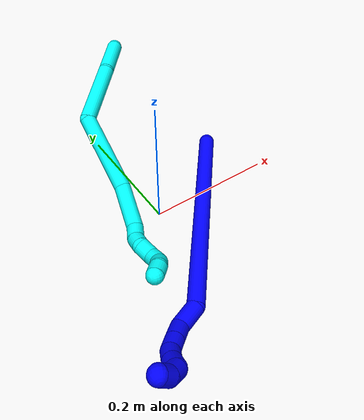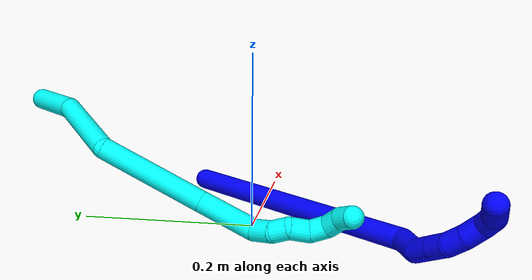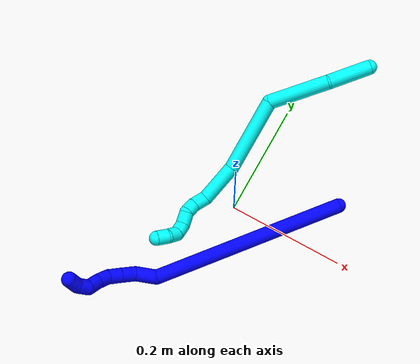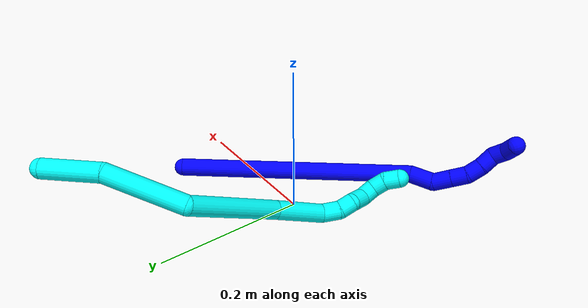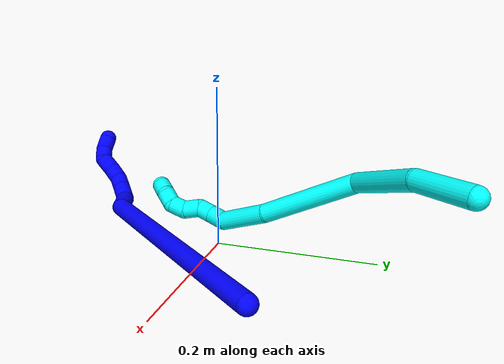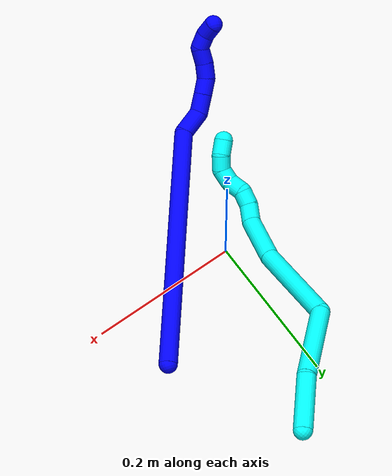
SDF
<sdf version="1.7">
 <world name="default">
  <model name="1">
   <static>0</static>
   <link name="1">
    <collision name="collision-cylinder-e_1_1_4">
     <pose>-0.037888 -0.055722 0.151927 0.351535 -0.229987 -0.041021</pose>
     <geometry><cylinder><radius>0.0125</radius><length>0.332398</length></cylinder></geometry>
     <surface>
      <friction><ode><mu>1.16</mu><mu2>1.16</mu2><slip1>0</slip1><slip2>0</slip2></ode></friction>
      <contact><ode><kp>1e+06</kp><kd>1</kd><max_vel>0</max_vel><min_depth>0.001</min_depth></ode></contact>
     </surface>
    </collision>
    <visual name="visual-cylinder-e_1_1_4">
     <pose>-0.037888 -0.055722 0.151927 0.351535 -0.229987 -0.041021</pose>
     <geometry><cylinder><radius>0.0125</radius><length>0.332398</length></cylinder></geometry>
     <material><ambient>0 0 1 1</ambient></material>
    </visual>
    <collision name="collision-cylinder-e_2_4_5">
     <pose>-0.087499 -0.119473 0.314761 0.634546 -0.713474 -0.243541</pose>
     <geometry><cylinder><radius>0.0125</radius><length>0.035827</length></cylinder></geometry>
     <surface>
      <friction><ode><mu>1.16</mu><mu2>1.16</mu2><slip1>0</slip1><slip2>0</slip2></ode></friction>
      <contact><ode><kp>1e+06</kp><kd>1</kd><max_vel>0</max_vel><min_depth>0.001</min_depth></ode></contact>
     </surface>
    </collision>
    <visual name="visual-cylinder-e_2_4_5">
     <pose>-0.087499 -0.119473 0.314761 0.634546 -0.713474 -0.243541</pose>
     <geometry><cylinder><radius>0.0125</radius><length>0.035827</length></cylinder></geometry>
     <material><ambient>0 0 1 1</ambient></material>
    </visual>
    <collision name="collision-cylinder-e_3_5_6">
     <pose>-0.106031 -0.127325 0.337002 -0.015611 -0.540894 0.004328</pose>
     <geometry><cylinder><radius>0.0125</radius><length>0.026444</length></cylinder></geometry>
     <surface>
      <friction><ode><mu>1.16</mu><mu2>1.16</mu2><slip1>0</slip1><slip2>0</slip2></ode></friction>
      <contact><ode><kp>1e+06</kp><kd>1</kd><max_vel>0</max_vel><min_depth>0.001</min_depth></ode></contact>
     </surface>
    </collision>
    <visual name="visual-cylinder-e_3_5_6">
     <pose>-0.106031 -0.127325 0.337002 -0.015611 -0.540894 0.004328</pose>
     <geometry><cylinder><radius>0.0125</radius><length>0.026444</length></cylinder></geometry>
     <material><ambient>0 0 1 1</ambient></material>
    </visual>
    <collision name="collision-cylinder-e_4_6_7">
     <pose>-0.118335 -0.127056 0.357895 -0.009713 -0.521786 0.002593</pose>
     <geometry><cylinder><radius>0.0125</radius><length>0.022055</length></cylinder></geometry>
     <surface>
      <friction><ode><mu>1.16</mu><mu2>1.16</mu2><slip1>0</slip1><slip2>0</slip2></ode></friction>
      <contact><ode><kp>1e+06</kp><kd>1</kd><max_vel>0</max_vel><min_depth>0.001</min_depth></ode></contact>
     </surface>
    </collision>
    <visual name="visual-cylinder-e_4_6_7">
     <pose>-0.118335 -0.127056 0.357895 -0.009713 -0.521786 0.002593</pose>
     <geometry><cylinder><radius>0.0125</radius><length>0.022055</length></cylinder></geometry>
     <material><ambient>0 0 1 1</ambient></material>
    </visual>
    <collision name="collision-cylinder-e_5_7_8">
     <pose>-0.126526 -0.124058 0.377314 -0.286514 -0.256338 0.037175</pose>
     <geometry><cylinder><radius>0.0125</radius><length>0.02125</length></cylinder></geometry>
     <surface>
      <friction><ode><mu>1.16</mu><mu2>1.16</mu2><slip1>0</slip1><slip2>0</slip2></ode></friction>
      <contact><ode><kp>1e+06</kp><kd>1</kd><max_vel>0</max_vel><min_depth>0.001</min_depth></ode></contact>
     </surface>
    </collision>
    <visual name="visual-cylinder-e_5_7_8">
     <pose>-0.126526 -0.124058 0.377314 -0.286514 -0.256338 0.037175</pose>
     <geometry><cylinder><radius>0.0125</radius><length>0.02125</length></cylinder></geometry>
     <material><ambient>0 0 1 1</ambient></material>
    </visual>
    <collision name="collision-cylinder-e_6_8_9">
     <pose>-0.130711 -0.116462 0.396968 -0.446663 -0.136489 0.031045</pose>
     <geometry><cylinder><radius>0.0125</radius><length>0.021925</length></cylinder></geometry>
     <surface>
      <friction><ode><mu>1.16</mu><mu2>1.16</mu2><slip1>0</slip1><slip2>0</slip2></ode></friction>
      <contact><ode><kp>1e+06</kp><kd>1</kd><max_vel>0</max_vel><min_depth>0.001</min_depth></ode></contact>
     </surface>
    </collision>
    <visual name="visual-cylinder-e_6_8_9">
     <pose>-0.130711 -0.116462 0.396968 -0.446663 -0.136489 0.031045</pose>
     <geometry><cylinder><radius>0.0125</radius><length>0.021925</length></cylinder></geometry>
     <material><ambient>0 0 1 1</ambient></material>
    </visual>
    <collision name="collision-cylinder-e_7_9_10">
     <pose>-0.139262 -0.109734 0.413548 -0.29169 -0.783671 0.12124</pose>
     <geometry><cylinder><radius>0.0125</radius><length>0.020001</length></cylinder></geometry>
     <surface>
      <friction><ode><mu>1.16</mu><mu2>1.16</mu2><slip1>0</slip1><slip2>0</slip2></ode></friction>
      <contact><ode><kp>1e+06</kp><kd>1</kd><max_vel>0</max_vel><min_depth>0.001</min_depth></ode></contact>
     </surface>
    </collision>
    <visual name="visual-cylinder-e_7_9_10">
     <pose>-0.139262 -0.109734 0.413548 -0.29169 -0.783671 0.12124</pose>
     <geometry><cylinder><radius>0.0125</radius><length>0.020001</length></cylinder></geometry>
     <material><ambient>0 0 1 1</ambient></material>
    </visual>
    <collision name="collision-cylinder-e_8_10_2">
     <pose>-0.154848 -0.10353 0.423638 -0.900195 -1.01307 0.523831</pose>
     <geometry><cylinder><radius>0.0125</radius><length>0.020098</length></cylinder></geometry>
     <surface>
      <friction><ode><mu>1.16</mu><mu2>1.16</mu2><slip1>0</slip1><slip2>0</slip2></ode></friction>
      <contact><ode><kp>1e+06</kp><kd>1</kd><max_vel>0</max_vel><min_depth>0.001</min_depth></ode></contact>
     </surface>
    </collision>
    <visual name="visual-cylinder-e_8_10_2">
     <pose>-0.154848 -0.10353 0.423638 -0.900195 -1.01307 0.523831</pose>
     <geometry><cylinder><radius>0.0125</radius><length>0.020098</length></cylinder></geometry>
     <material><ambient>0 0 1 1</ambient></material>
    </visual>
    <collision name="collision-sphere-2">
     <pose>-0.163374 -0.099363 0.426943 0 -0 0</pose>
     <geometry><sphere><radius>0.0125</radius></sphere></geometry>
     <surface>
      <friction><ode><mu>1.16</mu><mu2>1.16</mu2><slip1>0</slip1><slip2>0</slip2></ode></friction>
      <contact><ode><kp>1e+06</kp><kd>1</kd><max_vel>0</max_vel><min_depth>0.001</min_depth></ode></contact>
     </surface>
    </collision>
    <visual name="visual-sphere-2">
     <pose>-0.163374 -0.099363 0.426943 0 -0 0</pose>
     <geometry><sphere><radius>0.0125</radius></sphere></geometry>
     <material><ambient>0 0 1 1</ambient></material>
    </visual>
    <collision name="collision-sphere-10">
     <pose>-0.146322 -0.107697 0.420332 0 -0 0</pose>
     <geometry><sphere><radius>0.0125</radius></sphere></geometry>
     <surface>
      <friction><ode><mu>1.16</mu><mu2>1.16</mu2><slip1>0</slip1><slip2>0</slip2></ode></friction>
      <contact><ode><kp>1e+06</kp><kd>1</kd><max_vel>0</max_vel><min_depth>0.001</min_depth></ode></contact>
     </surface>
    </collision>
    <visual name="visual-sphere-10">
     <pose>-0.146322 -0.107697 0.420332 0 -0 0</pose>
     <geometry><sphere><radius>0.0125</radius></sphere></geometry>
     <material><ambient>0 0 1 1</ambient></material>
    </visual>
    <collision name="collision-sphere-9">
     <pose>-0.132203 -0.111771 0.406763 0 -0 0</pose>
     <geometry><sphere><radius>0.0125</radius></sphere></geometry>
     <surface>
      <friction><ode><mu>1.16</mu><mu2>1.16</mu2><slip1>0</slip1><slip2>0</slip2></ode></friction>
      <contact><ode><kp>1e+06</kp><kd>1</kd><max_vel>0</max_vel><min_depth>0.001</min_depth></ode></contact>
     </surface>
    </collision>
    <visual name="visual-sphere-9">
     <pose>-0.132203 -0.111771 0.406763 0 -0 0</pose>
     <geometry><sphere><radius>0.0125</radius></sphere></geometry>
     <material><ambient>0 0 1 1</ambient></material>
    </visual>
    <collision name="collision-sphere-4">
     <pose>-0.075775 -0.111444 0.303853 0 -0 0</pose>
     <geometry><sphere><radius>0.0125</radius></sphere></geometry>
     <surface>
      <friction><ode><mu>1.16</mu><mu2>1.16</mu2><slip1>0</slip1><slip2>0</slip2></ode></friction>
      <contact><ode><kp>1e+06</kp><kd>1</kd><max_vel>0</max_vel><min_depth>0.001</min_depth></ode></contact>
     </surface>
    </collision>
    <visual name="visual-sphere-4">
     <pose>-0.075775 -0.111444 0.303853 0 -0 0</pose>
     <geometry><sphere><radius>0.0125</radius></sphere></geometry>
     <material><ambient>0 0 1 1</ambient></material>
    </visual>
    <collision name="collision-sphere-1">
     <geometry><sphere><radius>0.0125</radius></sphere></geometry>
     <surface>
      <friction><ode><mu>1.16</mu><mu2>1.16</mu2><slip1>0</slip1><slip2>0</slip2></ode></friction>
      <contact><ode><kp>1e+06</kp><kd>1</kd><max_vel>0</max_vel><min_depth>0.001</min_depth></ode></contact>
     </surface>
    </collision>
    <visual name="visual-sphere-1">
     <geometry><sphere><radius>0.0125</radius></sphere></geometry>
     <material><ambient>0 0 1 1</ambient></material>
    </visual>
    <collision name="collision-sphere-8">
     <pose>-0.12922 -0.121153 0.387173 0 -0 0</pose>
     <geometry><sphere><radius>0.0125</radius></sphere></geometry>
     <surface>
      <friction><ode><mu>1.16</mu><mu2>1.16</mu2><slip1>0</slip1><slip2>0</slip2></ode></friction>
      <contact><ode><kp>1e+06</kp><kd>1</kd><max_vel>0</max_vel><min_depth>0.001</min_depth></ode></contact>
     </surface>
    </collision>
    <visual name="visual-sphere-8">
     <pose>-0.12922 -0.121153 0.387173 0 -0 0</pose>
     <geometry><sphere><radius>0.0125</radius></sphere></geometry>
     <material><ambient>0 0 1 1</ambient></material>
    </visual>
    <collision name="collision-sphere-5">
     <pose>-0.099223 -0.127502 0.325669 0 -0 0</pose>
     <geometry><sphere><radius>0.0125</radius></sphere></geometry>
     <surface>
      <friction><ode><mu>1.16</mu><mu2>1.16</mu2><slip1>0</slip1><slip2>0</slip2></ode></friction>
      <contact><ode><kp>1e+06</kp><kd>1</kd><max_vel>0</max_vel><min_depth>0.001</min_depth></ode></contact>
     </surface>
    </collision>
    <visual name="visual-sphere-5">
     <pose>-0.099223 -0.127502 0.325669 0 -0 0</pose>
     <geometry><sphere><radius>0.0125</radius></sphere></geometry>
     <material><ambient>0 0 1 1</ambient></material>
    </visual>
    <collision name="collision-sphere-6">
     <pose>-0.112839 -0.127148 0.348336 0 -0 0</pose>
     <geometry><sphere><radius>0.0125</radius></sphere></geometry>
     <surface>
      <friction><ode><mu>1.16</mu><mu2>1.16</mu2><slip1>0</slip1><slip2>0</slip2></ode></friction>
      <contact><ode><kp>1e+06</kp><kd>1</kd><max_vel>0</max_vel><min_depth>0.001</min_depth></ode></contact>
     </surface>
    </collision>
    <visual name="visual-sphere-6">
     <pose>-0.112839 -0.127148 0.348336 0 -0 0</pose>
     <geometry><sphere><radius>0.0125</radius></sphere></geometry>
     <material><ambient>0 0 1 1</ambient></material>
    </visual>
    <collision name="collision-sphere-7">
     <pose>-0.123832 -0.126963 0.367455 0 -0 0</pose>
     <geometry><sphere><radius>0.0125</radius></sphere></geometry>
     <surface>
      <friction><ode><mu>1.16</mu><mu2>1.16</mu2><slip1>0</slip1><slip2>0</slip2></ode></friction>
      <contact><ode><kp>1e+06</kp><kd>1</kd><max_vel>0</max_vel><min_depth>0.001</min_depth></ode></contact>
     </surface>
    </collision>
    <visual name="visual-sphere-7">
     <pose>-0.123832 -0.126963 0.367455 0 -0 0</pose>
     <geometry><sphere><radius>0.0125</radius></sphere></geometry>
     <material><ambient>0 0 1 1</ambient></material>
    </visual>
    <inertial>
     <pose>-0.065189 -0.076874 0.22418 0 -0 0</pose>
     <mass>0.5</mass>
     <inertia>
      <ixx>0.002867</ixx>
      <ixy>0</ixy>
      <ixz>0</ixz>
      <iyy>0.002777</iyy>
      <iyz>0</iyz>
      <izz>0.001773</izz>
     </inertia>
    </inertial>
   </link>
   <pose>0.156357 0.087677 0.011498 1.32093 0.409072 -0.432749</pose>
  </model>
  <model name="3">
   <static>0</static>
   <link name="3">
    <collision name="collision-cylinder-e_1_1_4">
     <pose>-0.013261 -0.019115 -0.027766 2.53868 -0.374809 -1.09529</pose>
     <geometry><cylinder><radius>0.0125</radius><length>0.072448</length></cylinder></geometry>
     <surface>
      <friction><ode><mu>1.16</mu><mu2>1.16</mu2><slip1>0</slip1><slip2>0</slip2></ode></friction>
      <contact><ode><kp>1e+06</kp><kd>1</kd><max_vel>0</max_vel><min_depth>0.001</min_depth></ode></contact>
     </surface>
    </collision>
    <visual name="visual-cylinder-e_1_1_4">
     <pose>-0.013261 -0.019115 -0.027766 2.53868 -0.374809 -1.09529</pose>
     <geometry><cylinder><radius>0.0125</radius><length>0.072448</length></cylinder></geometry>
     <material><ambient>0.003922 1 0.996078 1</ambient></material>
    </visual>
    <collision name="collision-cylinder-e_2_4_5">
     <pose>-0.032555 -0.074244 -0.092126 2.36417 -0.11696 -0.283984</pose>
     <geometry><cylinder><radius>0.0125</radius><length>0.103394</length></cylinder></geometry>
     <surface>
      <friction><ode><mu>1.16</mu><mu2>1.16</mu2><slip1>0</slip1><slip2>0</slip2></ode></friction>
      <contact><ode><kp>1e+06</kp><kd>1</kd><max_vel>0</max_vel><min_depth>0.001</min_depth></ode></contact>
     </surface>
    </collision>
    <visual name="visual-cylinder-e_2_4_5">
     <pose>-0.032555 -0.074244 -0.092126 2.36417 -0.11696 -0.283984</pose>
     <geometry><cylinder><radius>0.0125</radius><length>0.103394</length></cylinder></geometry>
     <material><ambient>0.003922 1 0.996078 1</ambient></material>
    </visual>
    <collision name="collision-cylinder-e_3_5_6">
     <pose>-0.070891 -0.164959 -0.137104 1.72289 -0.528372 -0.61056</pose>
     <geometry><cylinder><radius>0.0125</radius><length>0.128154</length></cylinder></geometry>
     <surface>
      <friction><ode><mu>1.16</mu><mu2>1.16</mu2><slip1>0</slip1><slip2>0</slip2></ode></friction>
      <contact><ode><kp>1e+06</kp><kd>1</kd><max_vel>0</max_vel><min_depth>0.001</min_depth></ode></contact>
     </surface>
    </collision>
    <visual name="visual-cylinder-e_3_5_6">
     <pose>-0.070891 -0.164959 -0.137104 1.72289 -0.528372 -0.61056</pose>
     <geometry><cylinder><radius>0.0125</radius><length>0.128154</length></cylinder></geometry>
     <material><ambient>0.003922 1 0.996078 1</ambient></material>
    </visual>
    <collision name="collision-cylinder-e_4_6_7">
     <pose>-0.119653 -0.247686 -0.156647 1.94971 -0.499455 -0.719422</pose>
     <geometry><cylinder><radius>0.0125</radius><length>0.06873</length></cylinder></geometry>
     <surface>
      <friction><ode><mu>1.16</mu><mu2>1.16</mu2><slip1>0</slip1><slip2>0</slip2></ode></friction>
      <contact><ode><kp>1e+06</kp><kd>1</kd><max_vel>0</max_vel><min_depth>0.001</min_depth></ode></contact>
     </surface>
    </collision>
    <visual name="visual-cylinder-e_4_6_7">
     <pose>-0.119653 -0.247686 -0.156647 1.94971 -0.499455 -0.719422</pose>
     <geometry><cylinder><radius>0.0125</radius><length>0.06873</length></cylinder></geometry>
     <material><ambient>0.003922 1 0.996078 1</ambient></material>
    </visual>
    <collision name="collision-cylinder-e_5_7_8">
     <pose>-0.143388 -0.28122 -0.17596 2.54761 -0.636722 -1.6448</pose>
     <geometry><cylinder><radius>0.0125</radius><length>0.024475</length></cylinder></geometry>
     <surface>
      <friction><ode><mu>1.16</mu><mu2>1.16</mu2><slip1>0</slip1><slip2>0</slip2></ode></friction>
      <contact><ode><kp>1e+06</kp><kd>1</kd><max_vel>0</max_vel><min_depth>0.001</min_depth></ode></contact>
     </surface>
    </collision>
    <visual name="visual-cylinder-e_5_7_8">
     <pose>-0.143388 -0.28122 -0.17596 2.54761 -0.636722 -1.6448</pose>
     <geometry><cylinder><radius>0.0125</radius><length>0.024475</length></cylinder></geometry>
     <material><ambient>0.003922 1 0.996078 1</ambient></material>
    </visual>
    <collision name="collision-cylinder-e_6_8_9">
     <pose>-0.15919 -0.289441 -0.188639 2.60119 -1.0166 -2.21886</pose>
     <geometry><cylinder><radius>0.0125</radius><length>0.020053</length></cylinder></geometry>
     <surface>
      <friction><ode><mu>1.16</mu><mu2>1.16</mu2><slip1>0</slip1><slip2>0</slip2></ode></friction>
      <contact><ode><kp>1e+06</kp><kd>1</kd><max_vel>0</max_vel><min_depth>0.001</min_depth></ode></contact>
     </surface>
    </collision>
    <visual name="visual-cylinder-e_6_8_9">
     <pose>-0.15919 -0.289441 -0.188639 2.60119 -1.0166 -2.21886</pose>
     <geometry><cylinder><radius>0.0125</radius><length>0.020053</length></cylinder></geometry>
     <material><ambient>0.003922 1 0.996078 1</ambient></material>
    </visual>
    <collision name="collision-cylinder-e_7_9_10">
     <pose>-0.176423 -0.299359 -0.19309 1.56052 -0.879641 -0.871751</pose>
     <geometry><cylinder><radius>0.0125</radius><length>0.022601</length></cylinder></geometry>
     <surface>
      <friction><ode><mu>1.16</mu><mu2>1.16</mu2><slip1>0</slip1><slip2>0</slip2></ode></friction>
      <contact><ode><kp>1e+06</kp><kd>1</kd><max_vel>0</max_vel><min_depth>0.001</min_depth></ode></contact>
     </surface>
    </collision>
    <visual name="visual-cylinder-e_7_9_10">
     <pose>-0.176423 -0.299359 -0.19309 1.56052 -0.879641 -0.871751</pose>
     <geometry><cylinder><radius>0.0125</radius><length>0.022601</length></cylinder></geometry>
     <material><ambient>0.003922 1 0.996078 1</ambient></material>
    </visual>
    <collision name="collision-cylinder-e_8_10_11">
     <pose>-0.194394 -0.308927 -0.196137 2.49308 -1.17087 -2.20314</pose>
     <geometry><cylinder><radius>0.0125</radius><length>0.020117</length></cylinder></geometry>
     <surface>
      <friction><ode><mu>1.16</mu><mu2>1.16</mu2><slip1>0</slip1><slip2>0</slip2></ode></friction>
      <contact><ode><kp>1e+06</kp><kd>1</kd><max_vel>0</max_vel><min_depth>0.001</min_depth></ode></contact>
     </surface>
    </collision>
    <visual name="visual-cylinder-e_8_10_11">
     <pose>-0.194394 -0.308927 -0.196137 2.49308 -1.17087 -2.20314</pose>
     <geometry><cylinder><radius>0.0125</radius><length>0.020117</length></cylinder></geometry>
     <material><ambient>0.003922 1 0.996078 1</ambient></material>
    </visual>
    <collision name="collision-cylinder-e_9_11_12">
     <pose>-0.210237 -0.310555 -0.206768 -3.04373 -0.716957 2.88165</pose>
     <geometry><cylinder><radius>0.0125</radius><length>0.020021</length></cylinder></geometry>
     <surface>
      <friction><ode><mu>1.16</mu><mu2>1.16</mu2><slip1>0</slip1><slip2>0</slip2></ode></friction>
      <contact><ode><kp>1e+06</kp><kd>1</kd><max_vel>0</max_vel><min_depth>0.001</min_depth></ode></contact>
     </surface>
    </collision>
    <visual name="visual-cylinder-e_9_11_12">
     <pose>-0.210237 -0.310555 -0.206768 -3.04373 -0.716957 2.88165</pose>
     <geometry><cylinder><radius>0.0125</radius><length>0.020021</length></cylinder></geometry>
     <material><ambient>0.003922 1 0.996078 1</ambient></material>
    </visual>
    <collision name="collision-cylinder-e_10_12_2">
     <pose>-0.221144 -0.311761 -0.223085 2.92448 -0.44754 -2.24836</pose>
     <geometry><cylinder><radius>0.0125</radius><length>0.020008</length></cylinder></geometry>
     <surface>
      <friction><ode><mu>1.16</mu><mu2>1.16</mu2><slip1>0</slip1><slip2>0</slip2></ode></friction>
      <contact><ode><kp>1e+06</kp><kd>1</kd><max_vel>0</max_vel><min_depth>0.001</min_depth></ode></contact>
     </surface>
    </collision>
    <visual name="visual-cylinder-e_10_12_2">
     <pose>-0.221144 -0.311761 -0.223085 2.92448 -0.44754 -2.24836</pose>
     <geometry><cylinder><radius>0.0125</radius><length>0.020008</length></cylinder></geometry>
     <material><ambient>0.003922 1 0.996078 1</ambient></material>
    </visual>
    <collision name="collision-sphere-2">
     <pose>-0.225473 -0.313704 -0.231892 0 -0 0</pose>
     <geometry><sphere><radius>0.0125</radius></sphere></geometry>
     <surface>
      <friction><ode><mu>1.16</mu><mu2>1.16</mu2><slip1>0</slip1><slip2>0</slip2></ode></friction>
      <contact><ode><kp>1e+06</kp><kd>1</kd><max_vel>0</max_vel><min_depth>0.001</min_depth></ode></contact>
     </surface>
    </collision>
    <visual name="visual-sphere-2">
     <pose>-0.225473 -0.313704 -0.231892 0 -0 0</pose>
     <geometry><sphere><radius>0.0125</radius></sphere></geometry>
     <material><ambient>0.003922 1 0.996078 1</ambient></material>
    </visual>
    <collision name="collision-sphere-12">
     <pose>-0.216815 -0.309818 -0.214278 0 -0 0</pose>
     <geometry><sphere><radius>0.0125</radius></sphere></geometry>
     <surface>
      <friction><ode><mu>1.16</mu><mu2>1.16</mu2><slip1>0</slip1><slip2>0</slip2></ode></friction>
      <contact><ode><kp>1e+06</kp><kd>1</kd><max_vel>0</max_vel><min_depth>0.001</min_depth></ode></contact>
     </surface>
    </collision>
    <visual name="visual-sphere-12">
     <pose>-0.216815 -0.309818 -0.214278 0 -0 0</pose>
     <geometry><sphere><radius>0.0125</radius></sphere></geometry>
     <material><ambient>0.003922 1 0.996078 1</ambient></material>
    </visual>
    <collision name="collision-sphere-11">
     <pose>-0.203659 -0.311293 -0.199258 0 -0 0</pose>
     <geometry><sphere><radius>0.0125</radius></sphere></geometry>
     <surface>
      <friction><ode><mu>1.16</mu><mu2>1.16</mu2><slip1>0</slip1><slip2>0</slip2></ode></friction>
      <contact><ode><kp>1e+06</kp><kd>1</kd><max_vel>0</max_vel><min_depth>0.001</min_depth></ode></contact>
     </surface>
    </collision>
    <visual name="visual-sphere-11">
     <pose>-0.203659 -0.311293 -0.199258 0 -0 0</pose>
     <geometry><sphere><radius>0.0125</radius></sphere></geometry>
     <material><ambient>0.003922 1 0.996078 1</ambient></material>
    </visual>
    <collision name="collision-sphere-10">
     <pose>-0.18513 -0.306562 -0.193016 0 -0 0</pose>
     <geometry><sphere><radius>0.0125</radius></sphere></geometry>
     <surface>
      <friction><ode><mu>1.16</mu><mu2>1.16</mu2><slip1>0</slip1><slip2>0</slip2></ode></friction>
      <contact><ode><kp>1e+06</kp><kd>1</kd><max_vel>0</max_vel><min_depth>0.001</min_depth></ode></contact>
     </surface>
    </collision>
    <visual name="visual-sphere-10">
     <pose>-0.18513 -0.306562 -0.193016 0 -0 0</pose>
     <geometry><sphere><radius>0.0125</radius></sphere></geometry>
     <material><ambient>0.003922 1 0.996078 1</ambient></material>
    </visual>
    <collision name="collision-sphere-9">
     <pose>-0.167715 -0.292156 -0.193164 0 -0 0</pose>
     <geometry><sphere><radius>0.0125</radius></sphere></geometry>
     <surface>
      <friction><ode><mu>1.16</mu><mu2>1.16</mu2><slip1>0</slip1><slip2>0</slip2></ode></friction>
      <contact><ode><kp>1e+06</kp><kd>1</kd><max_vel>0</max_vel><min_depth>0.001</min_depth></ode></contact>
     </surface>
    </collision>
    <visual name="visual-sphere-9">
     <pose>-0.167715 -0.292156 -0.193164 0 -0 0</pose>
     <geometry><sphere><radius>0.0125</radius></sphere></geometry>
     <material><ambient>0.003922 1 0.996078 1</ambient></material>
    </visual>
    <collision name="collision-sphere-4">
     <pose>-0.026523 -0.038229 -0.055532 0 -0 0</pose>
     <geometry><sphere><radius>0.0125</radius></sphere></geometry>
     <surface>
      <friction><ode><mu>1.16</mu><mu2>1.16</mu2><slip1>0</slip1><slip2>0</slip2></ode></friction>
      <contact><ode><kp>1e+06</kp><kd>1</kd><max_vel>0</max_vel><min_depth>0.001</min_depth></ode></contact>
     </surface>
    </collision>
    <visual name="visual-sphere-4">
     <pose>-0.026523 -0.038229 -0.055532 0 -0 0</pose>
     <geometry><sphere><radius>0.0125</radius></sphere></geometry>
     <material><ambient>0.003922 1 0.996078 1</ambient></material>
    </visual>
    <collision name="collision-sphere-1">
     <geometry><sphere><radius>0.0125</radius></sphere></geometry>
     <surface>
      <friction><ode><mu>1.16</mu><mu2>1.16</mu2><slip1>0</slip1><slip2>0</slip2></ode></friction>
      <contact><ode><kp>1e+06</kp><kd>1</kd><max_vel>0</max_vel><min_depth>0.001</min_depth></ode></contact>
     </surface>
    </collision>
    <visual name="visual-sphere-1">
     <geometry><sphere><radius>0.0125</radius></sphere></geometry>
     <material><ambient>0.003922 1 0.996078 1</ambient></material>
    </visual>
    <collision name="collision-sphere-8">
     <pose>-0.150664 -0.286727 -0.184114 0 -0 0</pose>
     <geometry><sphere><radius>0.0125</radius></sphere></geometry>
     <surface>
      <friction><ode><mu>1.16</mu><mu2>1.16</mu2><slip1>0</slip1><slip2>0</slip2></ode></friction>
      <contact><ode><kp>1e+06</kp><kd>1</kd><max_vel>0</max_vel><min_depth>0.001</min_depth></ode></contact>
     </surface>
    </collision>
    <visual name="visual-sphere-8">
     <pose>-0.150664 -0.286727 -0.184114 0 -0 0</pose>
     <geometry><sphere><radius>0.0125</radius></sphere></geometry>
     <material><ambient>0.003922 1 0.996078 1</ambient></material>
    </visual>
    <collision name="collision-sphere-5">
     <pose>-0.038588 -0.110259 -0.12872 0 -0 0</pose>
     <geometry><sphere><radius>0.0125</radius></sphere></geometry>
     <surface>
      <friction><ode><mu>1.16</mu><mu2>1.16</mu2><slip1>0</slip1><slip2>0</slip2></ode></friction>
      <contact><ode><kp>1e+06</kp><kd>1</kd><max_vel>0</max_vel><min_depth>0.001</min_depth></ode></contact>
     </surface>
    </collision>
    <visual name="visual-sphere-5">
     <pose>-0.038588 -0.110259 -0.12872 0 -0 0</pose>
     <geometry><sphere><radius>0.0125</radius></sphere></geometry>
     <material><ambient>0.003922 1 0.996078 1</ambient></material>
    </visual>
    <collision name="collision-sphere-6">
     <pose>-0.103194 -0.219659 -0.145488 0 -0 0</pose>
     <geometry><sphere><radius>0.0125</radius></sphere></geometry>
     <surface>
      <friction><ode><mu>1.16</mu><mu2>1.16</mu2><slip1>0</slip1><slip2>0</slip2></ode></friction>
      <contact><ode><kp>1e+06</kp><kd>1</kd><max_vel>0</max_vel><min_depth>0.001</min_depth></ode></contact>
     </surface>
    </collision>
    <visual name="visual-sphere-6">
     <pose>-0.103194 -0.219659 -0.145488 0 -0 0</pose>
     <geometry><sphere><radius>0.0125</radius></sphere></geometry>
     <material><ambient>0.003922 1 0.996078 1</ambient></material>
    </visual>
    <collision name="collision-sphere-7">
     <pose>-0.136112 -0.275713 -0.167806 0 -0 0</pose>
     <geometry><sphere><radius>0.0125</radius></sphere></geometry>
     <surface>
      <friction><ode><mu>1.16</mu><mu2>1.16</mu2><slip1>0</slip1><slip2>0</slip2></ode></friction>
      <contact><ode><kp>1e+06</kp><kd>1</kd><max_vel>0</max_vel><min_depth>0.001</min_depth></ode></contact>
     </surface>
    </collision>
    <visual name="visual-sphere-7">
     <pose>-0.136112 -0.275713 -0.167806 0 -0 0</pose>
     <geometry><sphere><radius>0.0125</radius></sphere></geometry>
     <material><ambient>0.003922 1 0.996078 1</ambient></material>
    </visual>
    <inertial>
     <pose>-0.089738 -0.170695 -0.129751 0 -0 0</pose>
     <mass>0.5</mass>
     <inertia>
      <ixx>6.8e-05</ixx>
      <ixy>0</ixy>
      <ixz>0</ixz>
      <iyy>-0.000224</iyy>
      <iyz>0</iyz>
      <izz>0.000384</izz>
     </inertia>
    </inertial>
   </link>
   <pose>0.095164 0.288501 0.124072 1.92763 0.488091 1.98972</pose>
  </model>
 </world>
</sdf>
